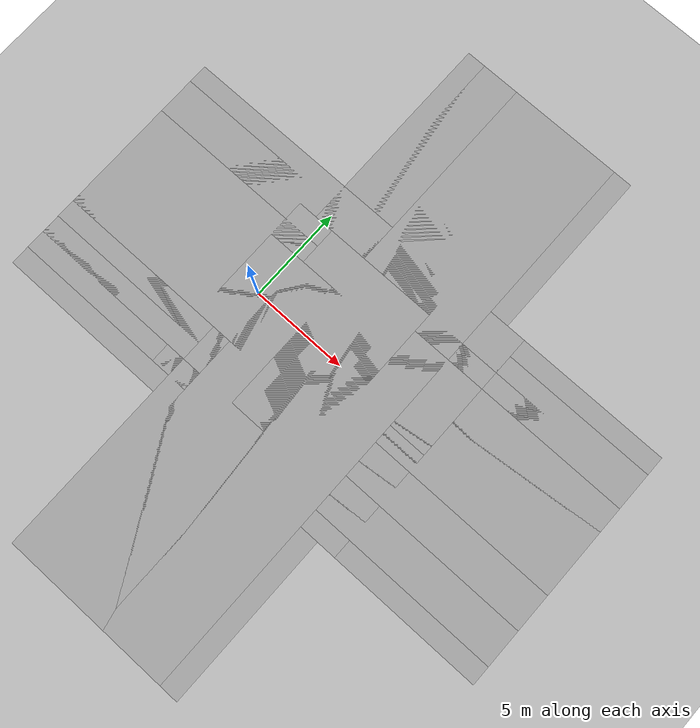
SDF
<sdf version="1.5">
 <world name="default">
  <include><uri>model://ground_plane</uri><pose>0 0 -.0001 0 0 0</pose></include>
  <include><uri>model://sun</uri></include>
  <include><uri>model://straight_road</uri><pose>.5 .5 0 0 0 0</pose></include>
  <include><uri>model://straight_road</uri><pose>.5 -.5 0 0 0 0</pose></include>
  <include><uri>model://straight_road</uri><pose>.5 1.5 0 0 0 0</pose></include>
  <include><uri>model://straight_road</uri><pose>.5 -1.5 0 0 0 0</pose></include>
  <include><uri>model://straight_road</uri><pose>.5 -2.5 0 0 0 0</pose></include>
  <include><uri>model://straight_road</uri><pose>.5 2.5 0 0 0 0</pose></include>
  <include><uri>model://straight_road</uri><pose>.5 -3.5 0 0 0 0</pose></include>
  <include><uri>model://straight_road</uri><pose>.5 3.5 0 0 0 0</pose></include>
  <include><uri>model://curved_road</uri><pose>1 5 0 0 0 0</pose></include>
  <include><uri>model://straight_road</uri><pose>2.5 5.5 0 0 0 -1.570796327</pose></include>
  <include><uri>model://straight_road</uri><pose>3.5 5.5 0 0 0 -1.570796327</pose></include>
  <include><uri>model://straight_road</uri><pose>4.5 5.5 0 0 0 -1.570796327</pose></include>
  <include><uri>model://straight_road</uri><pose>5.5 5.5 0 0 0 -1.570796327</pose></include>
  <include><uri>model://straight_road</uri><pose>6.5 5.5 0 0 0 -1.570796327</pose></include>
  <include><uri>model://curved_road</uri><pose>8 5 0 0 0 -1.570796327</pose></include>
  <include><uri>model://straight_road</uri><pose>2.5 -5.5 0 0 0 1.570796327</pose></include>
  <include><uri>model://straight_road</uri><pose>3.5 -5.5 0 0 0 1.570796327</pose></include>
  <include><uri>model://straight_road</uri><pose>4.5 -5.5 0 0 0 1.570796327</pose></include>
  <include><uri>model://straight_road</uri><pose>5.5 -5.5 0 0 0 1.570796327</pose></include>
  <include><uri>model://straight_road</uri><pose>6.5 -5.5 0 0 0 1.570796327</pose></include>
  <include><uri>model://curved_road</uri><pose>8 -5 0 0 0 3.141592654</pose></include>
  <include><uri>model://straight_road</uri><pose>8.5 .5 0 0 0 3.141592654</pose></include>
  <include><uri>model://straight_road</uri><pose>8.5 1.5 0 0 0 3.141592654</pose></include>
  <include><uri>model://straight_road</uri><pose>8.5 2.5 0 0 0 3.141592654</pose></include>
  <include><uri>model://straight_road</uri><pose>8.5 3.5 0 0 0 3.141592654</pose></include>
  <include><uri>model://straight_road</uri><pose>8.5 -.5 0 0 0 3.141592654</pose></include>
  <include><uri>model://straight_road</uri><pose>8.5 -1.5 0 0 0 3.141592654</pose></include>
  <include><uri>model://straight_road</uri><pose>8.5 -2.5 0 0 0 3.141592654</pose></include>
  <include><uri>model://straight_road</uri><pose>8.5 -3.5 0 0 0 3.141592654</pose></include>
  <include><uri>model://curved_road</uri><pose>1 -5 0 0 0 1.570796327</pose></include>
 </world>
</sdf>

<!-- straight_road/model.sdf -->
<sdf version='1.6'>
  <model name='straight_road'>
    <link name='link'>
      <inertial>
        <mass>1</mass>
        <inertia>
          <ixx>0.166667</ixx>
          <ixy>0</ixy>
          <ixz>0</ixz>
          <iyy>0.166667</iyy>
          <iyz>0</iyz>
          <izz>0.166667</izz>
        </inertia>
        <pose frame=''>0 0 0 0 -0 0</pose>
      </inertial>
      <self_collide>0</self_collide>
      <enable_wind>0</enable_wind>
      <kinematic>0</kinematic>
      <pose frame=''>0 0 0 0 -0 0</pose>
      <gravity>1</gravity>
      <visual name='visual'>
        <geometry>
          <box>
            <size>20 6 0.02</size>
          </box>
        </geometry>
        <material>
          <script>
            <name>simple_road/Diffuse</name>
            <uri>model://straight_road/materials/scripts</uri>
            <uri>model://straight_road/materials/textures</uri>
          </script>
          <shader type='vertex'>
            <normal_map>__default__</normal_map>
          </shader>
          <ambient>0.3 0.3 0.3 1</ambient>
          <diffuse>0.7 0.7 0.7 1</diffuse>
          <specular>0.01 0.01 0.01 1</specular>
          <emissive>0 0 0 1</emissive>
        </material>
        <pose frame=''>0 0 0.01 0 -0 0</pose>
        <transparency>0</transparency>
        <cast_shadows>1</cast_shadows>
      </visual>
      <collision name='collision'>
        <laser_retro>0</laser_retro>
        <max_contacts>10</max_contacts>
        <pose frame=''>0 0 0.01 0 -0 0</pose>
        <geometry>
          <box>
            <size>20 6 0.02</size>
          </box>
        </geometry>
        <surface>
          <friction>
            <ode>
              <mu>1</mu>
              <mu2>1</mu2>
              <fdir1>0 0 0</fdir1>
              <slip1>0</slip1>
              <slip2>0</slip2>
            </ode>
            <torsional>
              <coefficient>1</coefficient>
              <patch_radius>0</patch_radius>
              <surface_radius>0</surface_radius>
              <use_patch_radius>1</use_patch_radius>
              <ode>
                <slip>0</slip>
              </ode>
            </torsional>
          </friction>
          <bounce>
            <restitution_coefficient>0</restitution_coefficient>
            <threshold>1e+06</threshold>
          </bounce>
          <contact>
            <collide_without_contact>0</collide_without_contact>
            <collide_without_contact_bitmask>1</collide_without_contact_bitmask>
            <collide_bitmask>1</collide_bitmask>
            <ode>
              <soft_cfm>0</soft_cfm>
              <soft_erp>0.2</soft_erp>
              <kp>1e+13</kp>
              <kd>1</kd>
              <max_vel>0.01</max_vel>
              <min_depth>0</min_depth>
            </ode>
            <bullet>
              <split_impulse>1</split_impulse>
              <split_impulse_penetration_threshold>-0.01</split_impulse_penetration_threshold>
              <soft_cfm>0</soft_cfm>
              <soft_erp>0.2</soft_erp>
              <kp>1e+13</kp>
              <kd>1</kd>
            </bullet>
          </contact>
        </surface>
      </collision>
    </link>
    <static>1</static>
    <allow_auto_disable>1</allow_auto_disable>
  </model>
</sdf>

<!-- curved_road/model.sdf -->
<sdf version="1.4">
	<model name="curved_road">
		<static>true</static>
		<link name="link">
			<collision name="collision">
				<geometry>
					<plane>
						<normal>0 0 1</normal>
						<size>2 2</size>
					</plane>
				</geometry>
				<surface>
					<friction>
						<ode>
							<mu>100</mu>
							<mu2>50</mu2>
						</ode>
					</friction>
				</surface>
			</collision>
			<visual name="visual">
				<geometry>
					<plane>
						<normal>0 0 1</normal>
						<size>2 2</size>
					</plane>
				</geometry>
				<material>
					<script>
						<uri>model://curved_road/materials/scripts</uri>
						<uri>model://curved_road/materials/textures</uri>
						<name>curved_road/Image</name>
					</script>
				</material>
			</visual>
		</link>
	</model>
</sdf>
